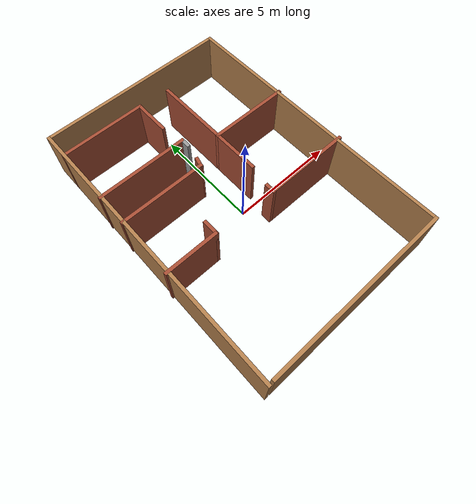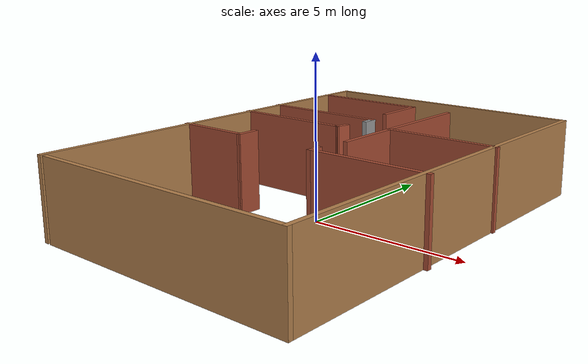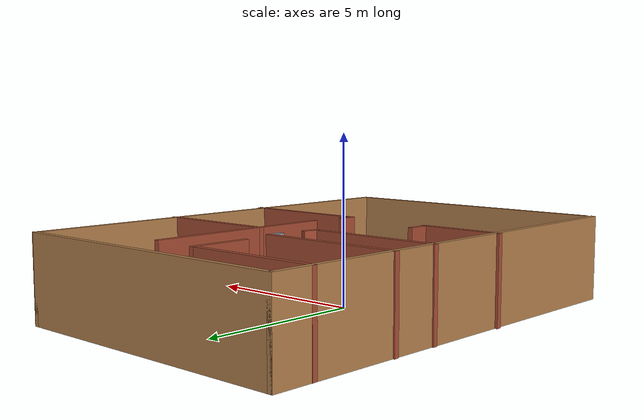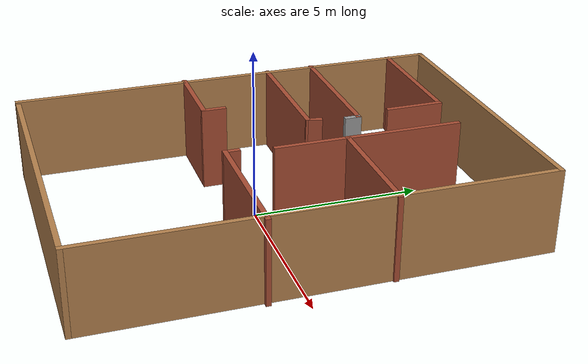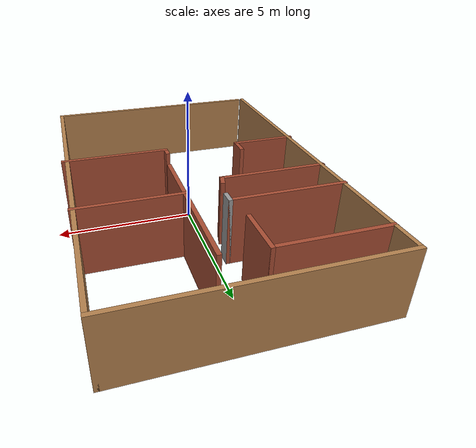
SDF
<?xml version='1.0'?>
<sdf version='1.6'>
  <model name='test_world2'>
    <pose frame=''>-0.041332 0.545081 0 0 -0 0</pose>
    <link name='Wall_0'>
      <collision name='Wall_0_Collision'>
        <geometry>
          <box>
            <size>13.25 0.15 2.5</size>
          </box>
        </geometry>
        <pose frame=''>0 0 1.25 0 -0 0</pose>
      </collision>
      <visual name='Wall_0_Visual'>
        <pose frame=''>0 0 1.25 0 -0 0</pose>
        <geometry>
          <box>
            <size>13.25 0.15 2.5</size>
          </box>
        </geometry>
        <material>
          <script>
            <uri>file://media/materials/scripts/gazebo.material</uri>
            <name>Gazebo/Wood</name>
          </script>
          <ambient>1 1 1 1</ambient>
        </material>
        <meta>
          <layer>0</layer>
        </meta>
      </visual>
      <pose frame=''>-4.45409 -0 0 0 -0 1.5708</pose>
    </link>
    <link name='Wall_1'>
      <collision name='Wall_1_Collision'>
        <geometry>
          <box>
            <size>9 0.15 2.5</size>
          </box>
        </geometry>
        <pose frame=''>0 0 1.25 0 -0 0</pose>
      </collision>
      <visual name='Wall_1_Visual'>
        <pose frame=''>0 0 1.25 0 -0 0</pose>
        <geometry>
          <box>
            <size>9 0.15 2.5</size>
          </box>
        </geometry>
        <material>
          <script>
            <uri>file://media/materials/scripts/gazebo.material</uri>
            <name>Gazebo/Wood</name>
          </script>
          <ambient>1 1 1 1</ambient>
        </material>
        <meta>
          <layer>0</layer>
        </meta>
      </visual>
      <pose frame=''>-0.029092 6.55 0 0 -0 0</pose>
    </link>
    <link name='Wall_11'>
      <collision name='Wall_11_Collision'>
        <geometry>
          <box>
            <size>4.25 0.15 2.5</size>
          </box>
        </geometry>
        <pose frame=''>0 0 1.25 0 -0 0</pose>
      </collision>
      <visual name='Wall_11_Visual'>
        <pose frame=''>0 0 1.25 0 -0 0</pose>
        <geometry>
          <box>
            <size>4.25 0.15 2.5</size>
          </box>
        </geometry>
        <material>
          <script>
            <uri>file://media/materials/scripts/gazebo.material</uri>
            <name>Gazebo/Bricks</name>
          </script>
          <ambient>1 1 1 1</ambient>
        </material>
        <meta>
          <layer>0</layer>
        </meta>
      </visual>
      <pose frame=''>-2.44495 2.74097 0 0 -0 0</pose>
    </link>
    <link name='Wall_12'>
      <collision name='Wall_12_Collision'>
        <geometry>
          <box>
            <size>0.5 0.15 2.5</size>
          </box>
        </geometry>
        <pose frame=''>0 0 1.25 0 -0 0</pose>
      </collision>
      <visual name='Wall_12_Visual'>
        <pose frame=''>0 0 1.25 0 -0 0</pose>
        <geometry>
          <box>
            <size>0.5 0.15 2.5</size>
          </box>
        </geometry>
        <material>
          <script>
            <uri>file://media/materials/scripts/gazebo.material</uri>
            <name>Gazebo/Grey</name>
          </script>
          <ambient>1 1 1 1</ambient>
        </material>
        <meta>
          <layer>0</layer>
        </meta>
      </visual>
      <pose frame=''>-0.394946 2.56597 0 0 -0 -1.5708</pose>
    </link>
    <link name='Wall_14'>
      <collision name='Wall_14_Collision'>
        <geometry>
          <box>
            <size>4 0.15 2.5</size>
          </box>
        </geometry>
        <pose frame=''>0 0 1.25 0 -0 0</pose>
      </collision>
      <visual name='Wall_14_Visual'>
        <pose frame=''>0 0 1.25 0 -0 0</pose>
        <geometry>
          <box>
            <size>4 0.15 2.5</size>
          </box>
        </geometry>
        <material>
          <script>
            <uri>file://media/materials/scripts/gazebo.material</uri>
            <name>Gazebo/Bricks</name>
          </script>
          <ambient>1 1 1 1</ambient>
        </material>
        <meta>
          <layer>0</layer>
        </meta>
      </visual>
      <pose frame=''>-2.53497 5.39946 0 0 -0 0</pose>
    </link>
    <link name='Wall_15'>
      <collision name='Wall_15_Collision'>
        <geometry>
          <box>
            <size>1.75 0.15 2.5</size>
          </box>
        </geometry>
        <pose frame=''>0 0 1.25 0 -0 0</pose>
      </collision>
      <visual name='Wall_15_Visual'>
        <pose frame=''>0 0 1.25 0 -0 0</pose>
        <geometry>
          <box>
            <size>1.75 0.15 2.5</size>
          </box>
        </geometry>
        <material>
          <script>
            <uri>file://media/materials/scripts/gazebo.material</uri>
            <name>Gazebo/Bricks</name>
          </script>
          <ambient>1 1 1 1</ambient>
        </material>
        <meta>
          <layer>0</layer>
        </meta>
      </visual>
      <pose frame=''>-0.609966 4.59946 0 0 -0 -1.5708</pose>
    </link>
    <link name='Wall_17'>
      <collision name='Wall_17_Collision'>
        <geometry>
          <box>
            <size>4 0.15 2.5</size>
          </box>
        </geometry>
        <pose frame=''>0 0 1.25 0 -0 0</pose>
      </collision>
      <visual name='Wall_17_Visual'>
        <pose frame=''>0 0 1.25 0 -0 0</pose>
        <geometry>
          <box>
            <size>4 0.15 2.5</size>
          </box>
        </geometry>
        <material>
          <script>
            <uri>file://media/materials/scripts/gazebo.material</uri>
            <name>Gazebo/Bricks</name>
          </script>
          <ambient>1 1 1 1</ambient>
        </material>
        <meta>
          <layer>0</layer>
        </meta>
      </visual>
      <pose frame=''>2.60493 -1.56158 0 0 -0 3.14159</pose>
    </link>
    <link name='Wall_18'>
      <collision name='Wall_18_Collision'>
        <geometry>
          <box>
            <size>0.5 0.15 2.5</size>
          </box>
        </geometry>
        <pose frame=''>0 0 1.25 0 -0 0</pose>
      </collision>
      <visual name='Wall_18_Visual'>
        <pose frame=''>0 0 1.25 0 -0 0</pose>
        <geometry>
          <box>
            <size>0.5 0.15 2.5</size>
          </box>
        </geometry>
        <material>
          <script>
            <uri>file://media/materials/scripts/gazebo.material</uri>
            <name>Gazebo/Bricks</name>
          </script>
          <ambient>1 1 1 1</ambient>
        </material>
        <meta>
          <layer>0</layer>
        </meta>
      </visual>
      <pose frame=''>0.679926 -1.38658 0 0 -0 1.5708</pose>
    </link>
    <link name='Wall_2'>
      <collision name='Wall_2_Collision'>
        <geometry>
          <box>
            <size>13.25 0.15 2.5</size>
          </box>
        </geometry>
        <pose frame=''>0 0 1.25 0 -0 0</pose>
      </collision>
      <visual name='Wall_2_Visual'>
        <pose frame=''>0 0 1.25 0 -0 0</pose>
        <geometry>
          <box>
            <size>13.25 0.15 2.5</size>
          </box>
        </geometry>
        <material>
          <script>
            <uri>file://media/materials/scripts/gazebo.material</uri>
            <name>Gazebo/Wood</name>
          </script>
          <ambient>1 1 1 1</ambient>
        </material>
        <meta>
          <layer>0</layer>
        </meta>
      </visual>
      <pose frame=''>4.39591 -0 0 0 -0 -1.5708</pose>
    </link>
    <link name='Wall_20'>
      <collision name='Wall_20_Collision'>
        <geometry>
          <box>
            <size>3.75 0.15 2.5</size>
          </box>
        </geometry>
        <pose frame=''>0 0 1.25 0 -0 0</pose>
      </collision>
      <visual name='Wall_20_Visual'>
        <pose frame=''>0 0 1.25 0 -0 0</pose>
        <geometry>
          <box>
            <size>3.75 0.15 2.5</size>
          </box>
        </geometry>
        <material>
          <script>
            <uri>file://media/materials/scripts/gazebo.material</uri>
            <name>Gazebo/Bricks</name>
          </script>
          <ambient>1 1 1 1</ambient>
        </material>
        <meta>
          <layer>0</layer>
        </meta>
      </visual>
      <pose frame=''>2.65997 1.93643 0 0 -0 3.14159</pose>
    </link>
    <link name='Wall_21'>
      <collision name='Wall_21_Collision'>
        <geometry>
          <box>
            <size>2.25 0.15 2.5</size>
          </box>
        </geometry>
        <pose frame=''>0 0 1.25 0 -0 0</pose>
      </collision>
      <visual name='Wall_21_Visual'>
        <pose frame=''>0 0 1.25 0 -0 0</pose>
        <geometry>
          <box>
            <size>2.25 0.15 2.5</size>
          </box>
        </geometry>
        <material>
          <script>
            <uri>file://media/materials/scripts/gazebo.material</uri>
            <name>Gazebo/Bricks</name>
          </script>
          <ambient>1 1 1 1</ambient>
        </material>
        <meta>
          <layer>0</layer>
        </meta>
      </visual>
      <pose frame=''>0.859966 0.886429 0 0 -0 -1.5708</pose>
    </link>
    <link name='Wall_23'>
      <collision name='Wall_23_Collision'>
        <geometry>
          <box>
            <size>3.5 0.15 2.5</size>
          </box>
        </geometry>
        <pose frame=''>0 0 1.25 0 -0 0</pose>
      </collision>
      <visual name='Wall_23_Visual'>
        <pose frame=''>0 0 1.25 0 -0 0</pose>
        <geometry>
          <box>
            <size>3.5 0.15 2.5</size>
          </box>
        </geometry>
        <material>
          <script>
            <uri>file://media/materials/scripts/gazebo.material</uri>
            <name>Gazebo/Bricks</name>
          </script>
          <ambient>1 1 1 1</ambient>
        </material>
        <meta>
          <layer>0</layer>
        </meta>
      </visual>
      <pose frame=''>0.859966 3.61143 0 0 -0 1.5708</pose>
    </link>
    <link name='Wall_3'>
      <collision name='Wall_3_Collision'>
        <geometry>
          <box>
            <size>8.75 0.15 2.5</size>
          </box>
        </geometry>
        <pose frame=''>0 0 1.25 0 -0 0</pose>
      </collision>
      <visual name='Wall_3_Visual'>
        <pose frame=''>0 0 1.25 0 -0 0</pose>
        <geometry>
          <box>
            <size>8.75 0.15 2.5</size>
          </box>
        </geometry>
        <material>
          <script>
            <uri>file://media/materials/scripts/gazebo.material</uri>
            <name>Gazebo/Wood</name>
          </script>
          <ambient>1 1 1 1</ambient>
        </material>
        <meta>
          <layer>0</layer>
        </meta>
      </visual>
      <pose frame=''>0.095908 -6.55 0 0 -0 3.14159</pose>
    </link>
    <link name='Wall_5'>
      <collision name='Wall_5_Collision'>
        <geometry>
          <box>
            <size>2.5 0.15 2.5</size>
          </box>
        </geometry>
        <pose frame=''>0 0 1.25 0 -0 0</pose>
      </collision>
      <visual name='Wall_5_Visual'>
        <pose frame=''>0 0 1.25 0 -0 0</pose>
        <geometry>
          <box>
            <size>2.5 0.15 2.5</size>
          </box>
        </geometry>
        <material>
          <script>
            <uri>file://media/materials/scripts/gazebo.material</uri>
            <name>Gazebo/Bricks</name>
          </script>
          <ambient>1 1 1 1</ambient>
        </material>
        <meta>
          <layer>0</layer>
        </meta>
      </visual>
      <pose frame=''>-3.35493 -1.42166 0 0 -0 0</pose>
    </link>
    <link name='Wall_6'>
      <collision name='Wall_6_Collision'>
        <geometry>
          <box>
            <size>0.75 0.15 2.5</size>
          </box>
        </geometry>
        <pose frame=''>0 0 1.25 0 -0 0</pose>
      </collision>
      <visual name='Wall_6_Visual'>
        <pose frame=''>0 0 1.25 0 -0 0</pose>
        <geometry>
          <box>
            <size>0.75 0.15 2.5</size>
          </box>
        </geometry>
        <material>
          <script>
            <uri>file://media/materials/scripts/gazebo.material</uri>
            <name>Gazebo/Bricks</name>
          </script>
          <ambient>1 1 1 1</ambient>
        </material>
        <meta>
          <layer>0</layer>
        </meta>
      </visual>
      <pose frame=''>-2.17993 -1.12166 0 0 -0 1.5708</pose>
    </link>
    <link name='Wall_8'>
      <collision name='Wall_8_Collision'>
        <geometry>
          <box>
            <size>4 0.15 2.5</size>
          </box>
        </geometry>
        <pose frame=''>0 0 1.25 0 -0 0</pose>
      </collision>
      <visual name='Wall_8_Visual'>
        <pose frame=''>0 0 1.25 0 -0 0</pose>
        <geometry>
          <box>
            <size>4 0.15 2.5</size>
          </box>
        </geometry>
        <material>
          <script>
            <uri>file://media/materials/scripts/gazebo.material</uri>
            <name>Gazebo/Bricks</name>
          </script>
          <ambient>1 1 1 1</ambient>
        </material>
        <meta>
          <layer>0</layer>
        </meta>
      </visual>
      <pose frame=''>-2.56995 1.27181 0 0 -0 0</pose>
    </link>
    <link name='Wall_9'>
      <collision name='Wall_9_Collision'>
        <geometry>
          <box>
            <size>0.5 0.15 2.5</size>
          </box>
        </geometry>
        <pose frame=''>0 0 1.25 0 -0 0</pose>
      </collision>
      <visual name='Wall_9_Visual'>
        <pose frame=''>0 0 1.25 0 -0 0</pose>
        <geometry>
          <box>
            <size>0.5 0.15 2.5</size>
          </box>
        </geometry>
        <material>
          <script>
            <uri>file://media/materials/scripts/gazebo.material</uri>
            <name>Gazebo/Bricks</name>
          </script>
          <ambient>1 1 1 1</ambient>
        </material>
        <meta>
          <layer>0</layer>
        </meta>
      </visual>
      <pose frame=''>-0.599653 1.44084 0 0 -0 1.309</pose>
    </link>
    <static>1</static>
  </model>
</sdf>
